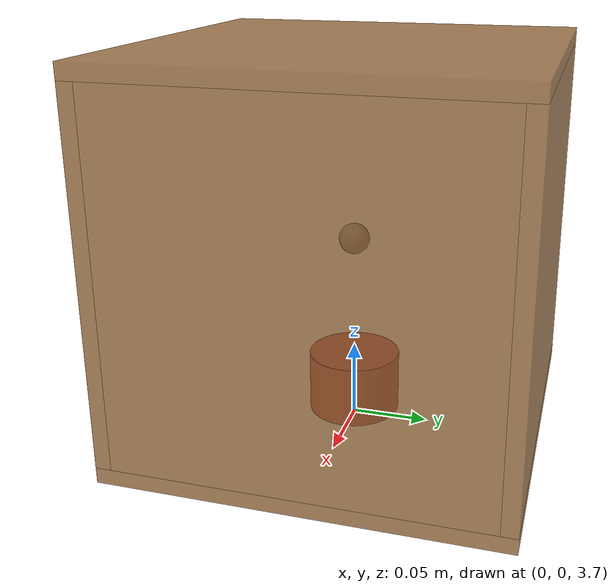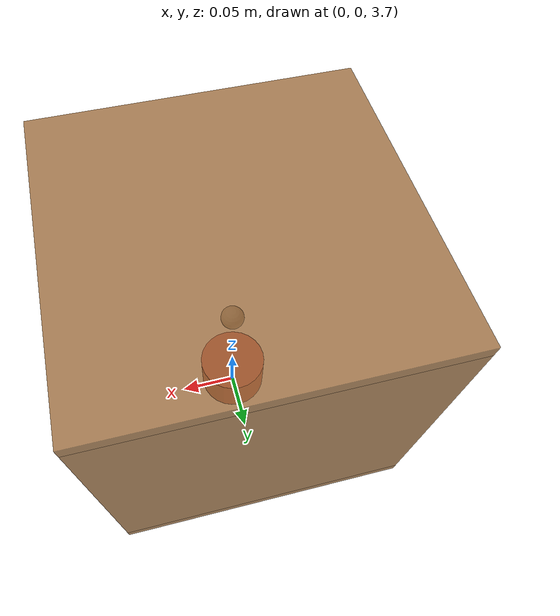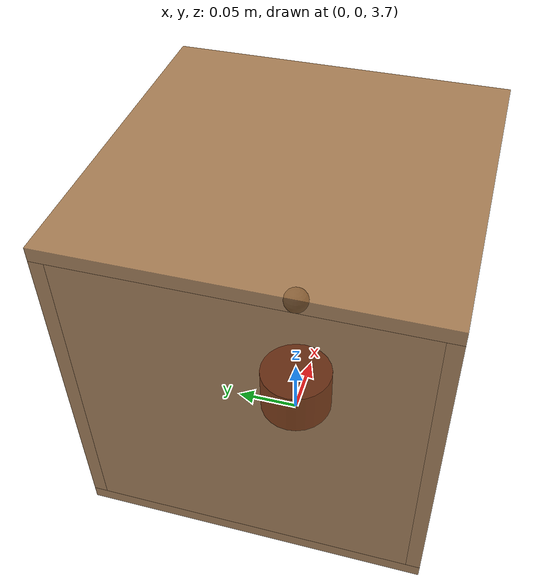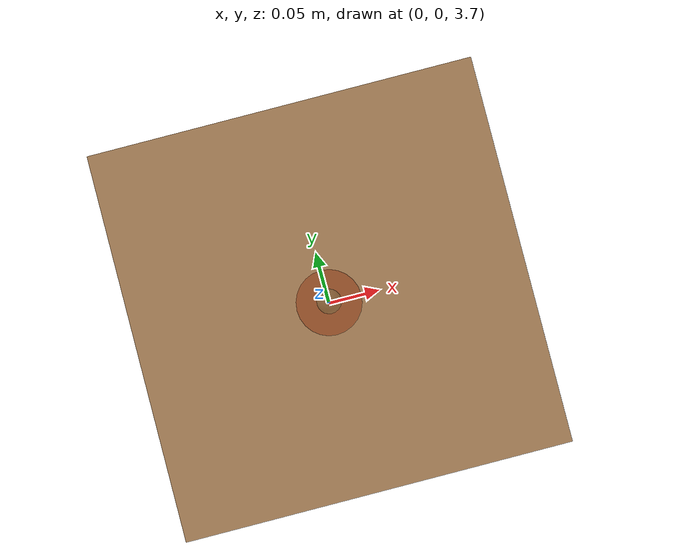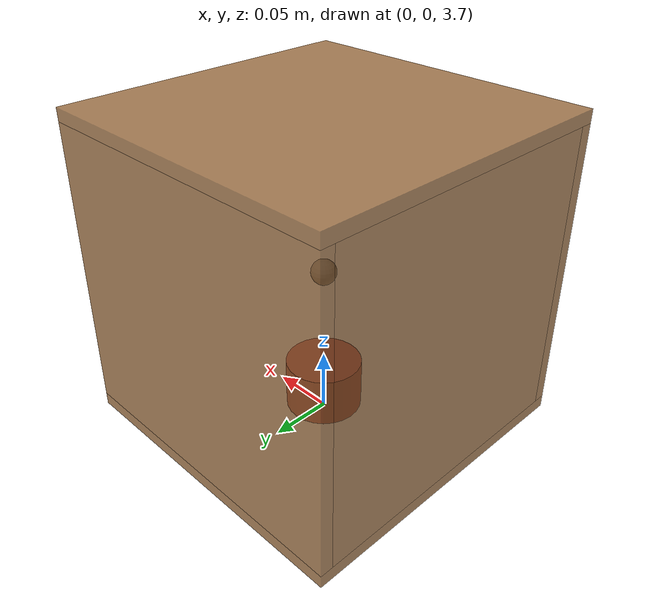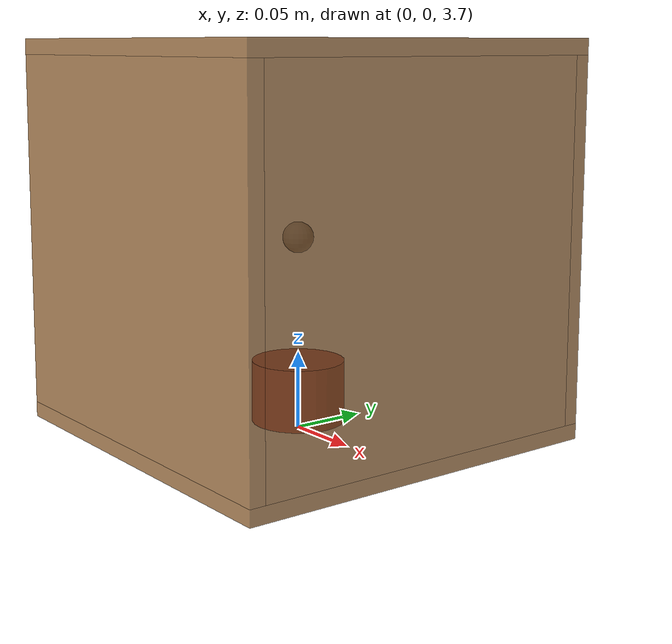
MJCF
<mujoco model="delivery_box_com_control">
  <!--
    택배상자 질량 중심 제어 장치 모델
    - 택배상자: 250mm x 250mm x 250mm, 5kg
    - 질량체: 1kg, CoreXY 방식으로 X-Y 평면에서 이동
    - 낙하 높이: 3.7m
  -->

  <compiler angle="radian" coordinate="local"/>

  <option timestep="0.001" gravity="0 0 -9.81" integrator="RK4"/>

  <default>
    <joint damping="0.1" armature="0.01"/>
    <geom condim="4" friction="0.8 0.05 0.001"/>
    <motor ctrllimited="true" ctrlrange="-50 50"/>
  </default>

  <asset>
    <texture name="grid" type="2d" builtin="checker" rgb1="0.1 0.2 0.3" rgb2="0.2 0.3 0.4" width="512" height="512"/>
    <material name="grid_mat" texture="grid" texrepeat="5 5" reflectance="0.2"/>
    <material name="box_mat" rgba="0.6 0.4 0.2 0.8"/>
    <material name="mass_mat" rgba="0.8 0.2 0.2 1"/>
  </asset>

  <worldbody>
    <!-- 바닥 -->
    <geom name="floor" type="plane" size="5 5 0.1" material="grid_mat" conaffinity="1" contype="1"/>

    <!-- 택배상자 본체 (5kg, 250x250x250mm) -->
    <!-- 초기 위치: 3.7m 높이 + 상자 절반 높이 -->
    <body name="box_body" pos="0 0 3.825">
      <freejoint name="box_joint"/>

      <!-- 센서용 사이트 -->
      <site name="box_center" pos="0 0 0" size="0.01"/>

      <!-- 상자 프레임 (테두리만 표현, 내부는 비어있음) -->
      <!-- 바닥면 -->
      <geom name="box_bottom" type="box" size="0.125 0.125 0.005" pos="0 0 -0.12"
            mass="1.0" material="box_mat" conaffinity="1" contype="1"/>
      <!-- 윗면 -->
      <geom name="box_top" type="box" size="0.125 0.125 0.005" pos="0 0 0.12"
            mass="0.8" material="box_mat" conaffinity="1" contype="1"/>
      <!-- 앞면 -->
      <geom name="box_front" type="box" size="0.125 0.005 0.115" pos="0 0.12 0"
            mass="0.8" material="box_mat" conaffinity="1" contype="1"/>
      <!-- 뒷면 -->
      <geom name="box_back" type="box" size="0.125 0.005 0.115" pos="0 -0.12 0"
            mass="0.8" material="box_mat" conaffinity="1" contype="1"/>
      <!-- 왼쪽면 -->
      <geom name="box_left" type="box" size="0.005 0.115 0.115" pos="-0.12 0 0"
            mass="0.8" material="box_mat" conaffinity="1" contype="1"/>
      <!-- 오른쪽면 -->
      <geom name="box_right" type="box" size="0.005 0.115 0.115" pos="0.12 0 0"
            mass="0.8" material="box_mat" conaffinity="1" contype="1"/>

      <!-- CoreXY 질량체 시스템 -->
      <!-- X축 슬라이드 (레일) - 0.05kg -->
      <body name="x_rail" pos="0 0 -0.10">
        <joint name="joint_x" type="slide" axis="1 0 0" range="-0.10 0.10" damping="0.5"/>
        <!-- X축 레일 (작은 질량) -->
        <geom name="x_rail_geom" type="box" size="0.10 0.005 0.005" mass="0.05"
              rgba="0.5 0.5 0.5 0.5" conaffinity="0" contype="0"/>

        <!-- Y축 슬라이드 (질량체) -->
        <body name="mass_body" pos="0 0 0">
          <joint name="joint_y" type="slide" axis="0 1 0" range="-0.10 0.10" damping="0.5"/>

          <!-- 제어 질량체 (1kg) -->
          <geom name="control_mass" type="cylinder" size="0.03 0.02" mass="1.0"
                material="mass_mat" conaffinity="0" contype="0"/>
        </body>
      </body>
    </body>
  </worldbody>

  <!-- 액추에이터: CoreXY 모터 (X, Y 방향 제어) -->
  <actuator>
    <motor name="motor_x" joint="joint_x" gear="1" ctrllimited="true" ctrlrange="-50 50"/>
    <motor name="motor_y" joint="joint_y" gear="1" ctrllimited="true" ctrlrange="-50 50"/>
  </actuator>

  <!-- 센서 -->
  <sensor>
    <!-- 상자 위치/자세 -->
    <framepos name="box_pos" objtype="body" objname="box_body"/>
    <framequat name="box_quat" objtype="body" objname="box_body"/>
    <framelinvel name="box_linvel" objtype="body" objname="box_body"/>
    <frameangvel name="box_angvel" objtype="body" objname="box_body"/>

    <!-- 질량체 위치 (상자 기준) -->
    <jointpos name="mass_x" joint="joint_x"/>
    <jointpos name="mass_y" joint="joint_y"/>

    <!-- 가속도계 및 자이로 -->
    <accelerometer name="box_acc" site="box_center"/>
    <gyro name="box_gyro" site="box_center"/>
  </sensor>

</mujoco>
